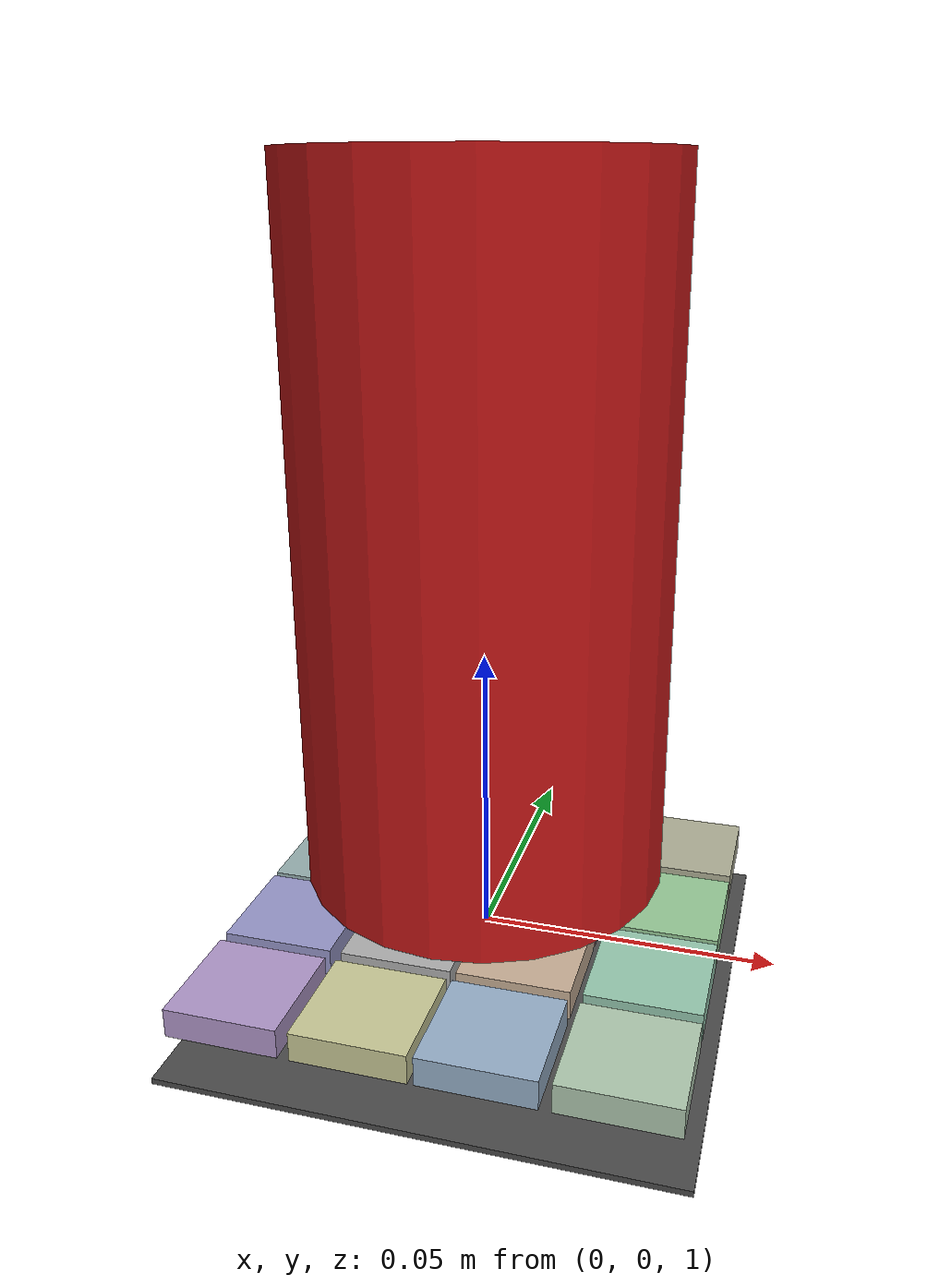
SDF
<sdf version="1.6">
<world name="default">
    <physics name="default_physics" default="0" type="ode">
        <max_step_size>0.0005</max_step_size>
        <real_time_factor>1</real_time_factor>
        <real_time_update_rate>50</real_time_update_rate>
        <ode>
            <solver>
                <type>quick</type>
                <iters>500</iters>
                <sor>1.2</sor>
                <use_dynamic_moi_rescaling>true</use_dynamic_moi_rescaling>
            </solver>
            <constraints>
                <cfm>0.0001</cfm>
                <erp>0.1</erp>
                <contact_max_correcting_vel>50</contact_max_correcting_vel>
                <contact_surface_layer>0.002</contact_surface_layer>
            </constraints>
        </ode>
    </physics>

    <include>
        <uri>model://ground_plane</uri>
    </include>
    <include>
        <uri>model://sun</uri>
    </include>

    <model name="force_sensor_grid">
        <!-- Row 1 -->
        <model name="sensor_00">
            <pose>-0.031 0.031 1.0 0 0 0</pose>
            <link name="sensor_link_00">
                <inertial>
                    <mass>0.2</mass>
                    <inertia>
                        <ixx>0.000001</ixx>
                        <ixy>0.0</ixy>
                        <ixz>0.0</ixz>
                        <iyy>0.000001</iyy>
                        <iyz>0.0</iyz>
                        <izz>0.000001</izz>
                    </inertia>
                </inertial>
                <visual name="visual">
                    <geometry>
                        <box>
                            <size>0.019 0.019 0.005</size>
                        </box>
                    </geometry>
                    <material>
                        <ambient>0.7 0.6 0.6 1</ambient>
                        <diffuse>0.7 0.6 0.6 1</diffuse>
                    </material>
                </visual>
                <collision name="collision">
                    <geometry>
                        <box>
                            <size>0.019 0.019 0.005</size>
                        </box>
                    </geometry>
                    <surface>
                        <contact>
                            <ode>
                                <soft_cfm>0.001</soft_cfm>
                                <soft_erp>0.2</soft_erp>
                                <kp>1000.0</kp>
                                <kd>100.0</kd>
                            </ode>
                        </contact>
                    </surface>
                </collision>
            </link>
            <joint name="sensor_joint_00" type="fixed">
                <parent>world</parent>
                <child>sensor_link_00</child>
                <physics>
                    <ode>
                        <damping>0.1</damping>
                        <stiffness>1000</stiffness>
                    </ode>
                </physics>
                <sensor name="force_torque_00" type="force_torque">
                    <always_on>1</always_on>
                     <update_rate>50</update_rate>
                    <force_torque>
                        <frame>child</frame>
                        <measure_direction>child_to_parent</measure_direction>
                    </force_torque>
                </sensor>
            </joint>
        </model>

        <model name="sensor_01">
            <pose>-0.010 0.031 1.0 0 0 0</pose>
            <link name="sensor_link_01">
                <inertial>
                    <mass>0.2</mass>
                    <inertia>
                        <ixx>0.000001</ixx>
                        <ixy>0.0</ixy>
                        <ixz>0.0</ixz>
                        <iyy>0.000001</iyy>
                        <iyz>0.0</iyz>
                        <izz>0.000001</izz>
                    </inertia>
                </inertial>
                <visual name="visual">
                    <geometry>
                        <box>
                            <size>0.019 0.019 0.005</size>
                        </box>
                    </geometry>
                    <material>
                        <ambient>0.6 0.7 0.6 1</ambient>
                        <diffuse>0.6 0.7 0.6 1</diffuse>
                    </material>
                </visual>
                <collision name="collision">
                    <geometry>
                        <box>
                            <size>0.019 0.019 0.005</size>
                        </box>
                    </geometry>
                    <surface>
                        <contact>
                            <ode>
                                <soft_cfm>0.001</soft_cfm>
                                <soft_erp>0.2</soft_erp>
                                <kp>1000.0</kp>
                                <kd>100.0</kd>
                            </ode>
                        </contact>
                    </surface>
                </collision>
            </link>
            <joint name="sensor_joint_01" type="fixed">
                <parent>world</parent>
                <child>sensor_link_01</child>
                <physics>
                    <ode>
                        <damping>0.1</damping>
                        <stiffness>1000</stiffness>
                    </ode>
                </physics>
                <sensor name="force_torque_01" type="force_torque">
                    <always_on>1</always_on>
                     <update_rate>50</update_rate>
                    <force_torque>
                        <frame>child</frame>
                        <measure_direction>child_to_parent</measure_direction>
                    </force_torque>
                </sensor>
            </joint>
        </model>

        <model name="sensor_02">
            <pose>0.010 0.031 1.0 0 0 0</pose>
            <link name="sensor_link_02">
                <inertial>
                    <mass>0.2</mass>
                    <inertia>
                        <ixx>0.000001</ixx>
                        <ixy>0.0</ixy>
                        <ixz>0.0</ixz>
                        <iyy>0.000001</iyy>
                        <iyz>0.0</iyz>
                        <izz>0.000001</izz>
                    </inertia>
                </inertial>
                <visual name="visual">
                    <geometry>
                        <box>
                            <size>0.019 0.019 0.005</size>
                        </box>
                    </geometry>
                    <material>
                        <ambient>0.6 0.6 0.7 1</ambient>
                        <diffuse>0.6 0.6 0.7 1</diffuse>
                    </material>
                </visual>
                <collision name="collision">
                    <geometry>
                        <box>
                            <size>0.019 0.019 0.005</size>
                        </box>
                    </geometry>
                    <surface>
                        <contact>
                            <ode>
                                <soft_cfm>0.001</soft_cfm>
                                <soft_erp>0.2</soft_erp>
                                <kp>1000.0</kp>
                                <kd>100.0</kd>
                            </ode>
                        </contact>
                    </surface>
                </collision>
            </link>
            <joint name="sensor_joint_02" type="fixed">
                <parent>world</parent>
                <child>sensor_link_02</child>
                <physics>
                    <ode>
                        <damping>0.1</damping>
                        <stiffness>1000</stiffness>
                    </ode>
                </physics>
                <sensor name="force_torque_02" type="force_torque">
                    <always_on>1</always_on>
                     <update_rate>50</update_rate>
                    <force_torque>
                        <frame>child</frame>
                        <measure_direction>child_to_parent</measure_direction>
                    </force_torque>
                </sensor>
            </joint>
        </model>

        <model name="sensor_03">
            <pose>0.031 0.031 1.0 0 0 0</pose>
            <link name="sensor_link_03">
                <inertial>
                    <mass>0.2</mass>
                    <inertia>
                        <ixx>0.000001</ixx>
                        <ixy>0.0</ixy>
                        <ixz>0.0</ixz>
                        <iyy>0.000001</iyy>
                        <iyz>0.0</iyz>
                        <izz>0.000001</izz>
                    </inertia>
                </inertial>
                <visual name="visual">
                    <geometry>
                        <box>
                            <size>0.019 0.019 0.005</size>
                        </box>
                    </geometry>
                    <material>
                        <ambient>0.7 0.7 0.6 1</ambient>
                        <diffuse>0.7 0.7 0.6 1</diffuse>
                    </material>
                </visual>
                <collision name="collision">
                    <geometry>
                        <box>
                            <size>0.019 0.019 0.005</size>
                        </box>
                    </geometry>
                    <surface>
                        <contact>
                            <ode>
                                <soft_cfm>0.001</soft_cfm>
                                <soft_erp>0.2</soft_erp>
                                <kp>1000.0</kp>
                                <kd>100.0</kd>
                            </ode>
                        </contact>
                    </surface>
                </collision>
            </link>
            <joint name="sensor_joint_03" type="fixed">
                <parent>world</parent>
                <child>sensor_link_03</child>
                <physics>
                    <ode>
                        <damping>0.1</damping>
                        <stiffness>1000</stiffness>
                    </ode>
                </physics>
                <sensor name="force_torque_03" type="force_torque">
                    <always_on>1</always_on>
                     <update_rate>50</update_rate>
                    <force_torque>
                        <frame>child</frame>
                        <measure_direction>child_to_parent</measure_direction>
                    </force_torque>
                </sensor>
            </joint>
        </model>

        <!-- Row 2 -->
        <model name="sensor_10">
            <pose>-0.031 0.010 1.0 0 0 0</pose>
            <link name="sensor_link_10">
                <inertial>
                    <mass>0.2</mass>
                    <inertia>
                        <ixx>0.000001</ixx>
                        <ixy>0.0</ixy>
                        <ixz>0.0</ixz>
                        <iyy>0.000001</iyy>
                        <iyz>0.0</iyz>
                        <izz>0.000001</izz>
                    </inertia>
                </inertial>
                <visual name="visual">
                    <geometry>
                        <box>
                            <size>0.019 0.019 0.005</size>
                        </box>
                    </geometry>
                    <material>
                        <ambient>0.6 0.7 0.7 1</ambient>
                        <diffuse>0.6 0.7 0.7 1</diffuse>
                    </material>
                </visual>
                <collision name="collision">
                    <geometry>
                        <box>
                            <size>0.019 0.019 0.005</size>
                        </box>
                    </geometry>
                    <surface>
                        <contact>
                            <ode>
                                <soft_cfm>0.001</soft_cfm>
                                <soft_erp>0.2</soft_erp>
                                <kp>1000.0</kp>
                                <kd>100.0</kd>
                            </ode>
                        </contact>
                    </surface>
                </collision>
            </link>
            <joint name="sensor_joint_10" type="fixed">
                <parent>world</parent>
                <child>sensor_link_10</child>
                <physics>
                    <ode>
                        <damping>0.1</damping>
                        <stiffness>1000</stiffness>
                    </ode>
                </physics>
                <sensor name="force_torque_10" type="force_torque">
                    <always_on>1</always_on>
                     <update_rate>50</update_rate>
                    <force_torque>
                        <frame>child</frame>
                        <measure_direction>child_to_parent</measure_direction>
                    </force_torque>
                </sensor>
            </joint>
        </model>

        <model name="sensor_11">
            <pose>-0.010 0.010 1.0 0 0 0</pose>
            <link name="sensor_link_11">
                <inertial>
                    <mass>0.2</mass>
                    <inertia>
                        <ixx>0.000001</ixx>
                        <ixy>0.0</ixy>
                        <ixz>0.0</ixz>
                        <iyy>0.000001</iyy>
                        <iyz>0.0</iyz>
                        <izz>0.000001</izz>
                    </inertia>
                </inertial>
                <visual name="visual">
                    <geometry>
                        <box>
                            <size>0.019 0.019 0.005</size>
                        </box>
                    </geometry>
                    <material>
                        <ambient>0.7 0.6 0.7 1</ambient>
                        <diffuse>0.7 0.6 0.7 1</diffuse>
                    </material>
                </visual>
                <collision name="collision">
                    <geometry>
                        <box>
                            <size>0.019 0.019 0.005</size>
                        </box>
                    </geometry>
                    <surface>
                        <contact>
                            <ode>
                                <soft_cfm>0.001</soft_cfm>
                                <soft_erp>0.2</soft_erp>
                                <kp>1000.0</kp>
                                <kd>100.0</kd>
                            </ode>
                        </contact>
                    </surface>
                </collision>
            </link>
            <joint name="sensor_joint_11" type="fixed">
                <parent>world</parent>
                <child>sensor_link_11</child>
                <physics>
                    <ode>
                        <damping>0.1</damping>
                        <stiffness>1000</stiffness>
                    </ode>
                </physics>
                <sensor name="force_torque_11" type="force_torque">
                    <always_on>1</always_on>
                     <update_rate>50</update_rate>
                    <force_torque>
                        <frame>child</frame>
                        <measure_direction>child_to_parent</measure_direction>
                    </force_torque>
                </sensor>
            </joint>
        </model>

        <model name="sensor_12">
            <pose>0.010 0.010 1.0 0 0 0</pose>
            <link name="sensor_link_12">
                <inertial>
                    <mass>0.2</mass>
                    <inertia>
                        <ixx>0.000001</ixx>
                        <ixy>0.0</ixy>
                        <ixz>0.0</ixz>
                        <iyy>0.000001</iyy>
                        <iyz>0.0</iyz>
                        <izz>0.000001</izz>
                    </inertia>
                </inertial>
                <visual name="visual">
                    <geometry>
                        <box>
                            <size>0.019 0.019 0.005</size>
                        </box>
                    </geometry>
                    <material>
                        <ambient>0.8 0.6 0.6 1</ambient>
                        <diffuse>0.8 0.6 0.6 1</diffuse>
                    </material>
                </visual>
                <collision name="collision">
                    <geometry>
                        <box>
                            <size>0.019 0.019 0.005</size>
                        </box>
                    </geometry>
                    <surface>
                        <contact>
                            <ode>
                                <soft_cfm>0.001</soft_cfm>
                                <soft_erp>0.2</soft_erp>
                                <kp>1000.0</kp>
                                <kd>100.0</kd>
                            </ode>
                        </contact>
                    </surface>
                </collision>
            </link>
            <joint name="sensor_joint_12" type="fixed">
                <parent>world</parent>
                <child>sensor_link_12</child>
                <physics>
                    <ode>
                        <damping>0.1</damping>
                        <stiffness>1000</stiffness>
                    </ode>
                </physics>
                <sensor name="force_torque_12" type="force_torque">
                    <always_on>1</always_on>
                     <update_rate>50</update_rate>
                    <force_torque>
                        <frame>child</frame>
                        <measure_direction>child_to_parent</measure_direction>
                    </force_torque>
                </sensor>
            </joint>
        </model>

        <model name="sensor_13">
            <pose>0.031 0.010 1.0 0 0 0</pose>
            <link name="sensor_link_13">
                <inertial>
                    <mass>0.2</mass>
                    <inertia>
                        <ixx>0.000001</ixx>
                        <ixy>0.0</ixy>
                        <ixz>0.0</ixz>
                        <iyy>0.000001</iyy>
                        <iyz>0.0</iyz>
                        <izz>0.000001</izz>
                    </inertia>
                </inertial>
                <visual name="visual">
                    <geometry>
                        <box>
                            <size>0.019 0.019 0.005</size>
                        </box>
                    </geometry>
                    <material>
                        <ambient>0.6 0.8 0.6 1</ambient>
                        <diffuse>0.6 0.8 0.6 1</diffuse>
                    </material>
                </visual>
                <collision name="collision">
                    <geometry>
                        <box>
                            <size>0.019 0.019 0.005</size>
                        </box>
                    </geometry>
                    <surface>
                        <contact>
                            <ode>
                                <soft_cfm>0.001</soft_cfm>
                                <soft_erp>0.2</soft_erp>
                                <kp>1000.0</kp>
                                <kd>100.0</kd>
                            </ode>
                        </contact>
                    </surface>
                </collision>
            </link>
            <joint name="sensor_joint_13" type="fixed">
                <parent>world</parent>
                <child>sensor_link_13</child>
                <physics>
                    <ode>
                        <damping>0.1</damping>
                        <stiffness>1000</stiffness>
                    </ode>
                </physics>
                <sensor name="force_torque_13" type="force_torque">
                    <always_on>1</always_on>
                     <update_rate>50</update_rate>
                    <force_torque>
                        <frame>child</frame>
                        <measure_direction>child_to_parent</measure_direction>
                    </force_torque>
                </sensor>
            </joint>
        </model>

        <!-- Row 3 -->
        <model name="sensor_20">
            <pose>-0.031 -0.010 1.0 0 0 0</pose>
            <link name="sensor_link_20">
                <inertial>
                    <mass>0.2</mass>
                    <inertia>
                        <ixx>0.000001</ixx>
                        <ixy>0.0</ixy>
                        <ixz>0.0</ixz>
                        <iyy>0.000001</iyy>
                        <iyz>0.0</iyz>
                        <izz>0.000001</izz>
                    </inertia>
                </inertial>
                <visual name="visual">
                    <geometry>
                        <box>
                            <size>0.019 0.019 0.005</size>
                        </box>
                    </geometry>
                    <material>
                        <ambient>0.6 0.6 0.8 1</ambient>
                        <diffuse>0.6 0.6 0.8 1</diffuse>
                    </material>
                </visual>
                <collision name="collision">
                    <geometry>
                        <box>
                            <size>0.019 0.019 0.005</size>
                        </box>
                    </geometry>
                    <surface>
                        <contact>
                            <ode>
                                <soft_cfm>0.001</soft_cfm>
                                <soft_erp>0.2</soft_erp>
                                <kp>1000.0</kp>
                                <kd>100.0</kd>
                            </ode>
                        </contact>
                    </surface>
                </collision>
            </link>
            <joint name="sensor_joint_20" type="fixed">
                <parent>world</parent>
                <child>sensor_link_20</child>
                <physics>
                    <ode>
                        <damping>0.1</damping>
                        <stiffness>1000</stiffness>
                    </ode>
                </physics>
                <sensor name="force_torque_20" type="force_torque">
                    <always_on>1</always_on>
                     <update_rate>50</update_rate>
                    <force_torque>
                        <frame>child</frame>
                        <measure_direction>child_to_parent</measure_direction>
                    </force_torque>
                </sensor>
            </joint>
        </model>

        <model name="sensor_21">
            <pose>-0.010 -0.010 1.0 0 0 0</pose>
            <link name="sensor_link_21">
                <inertial>
                    <mass>0.2</mass>
                    <inertia>
                        <ixx>0.000001</ixx>
                        <ixy>0.0</ixy>
                        <ixz>0.0</ixz>
                        <iyy>0.000001</iyy>
                        <iyz>0.0</iyz>
                        <izz>0.000001</izz>
                    </inertia>
                </inertial>
                <visual name="visual">
                    <geometry>
                        <box>
                            <size>0.019 0.019 0.005</size>
                        </box>
                    </geometry>
                    <material>
                        <ambient>0.7 0.7 0.7 1</ambient>
                        <diffuse>0.7 0.7 0.7 1</diffuse>
                    </material>
                </visual>
                <collision name="collision">
                    <geometry>
                        <box>
                            <size>0.019 0.019 0.005</size>
                        </box>
                    </geometry>
                    <surface>
                        <contact>
                            <ode>
                                <soft_cfm>0.001</soft_cfm>
                                <soft_erp>0.2</soft_erp>
                                <kp>1000.0</kp>
                                <kd>100.0</kd>
                            </ode>
                        </contact>
                    </surface>
                </collision>
            </link>
            <joint name="sensor_joint_21" type="fixed">
                <parent>world</parent>
                <child>sensor_link_21</child>
                <physics>
                    <ode>
                        <damping>0.1</damping>
                        <stiffness>1000</stiffness>
                    </ode>
                </physics>
                <sensor name="force_torque_21" type="force_torque">
                    <always_on>1</always_on>
                     <update_rate>50</update_rate>
                    <force_torque>
                        <frame>child</frame>
                        <measure_direction>child_to_parent</measure_direction>
                    </force_torque>
                </sensor>
            </joint>
        </model>

        <model name="sensor_22">
            <pose>0.010 -0.010 1.0 0 0 0</pose>
            <link name="sensor_link_22">
                <inertial>
                    <mass>0.2</mass>
                    <inertia>
                        <ixx>0.000001</ixx>
                        <ixy>0.0</ixy>
                        <ixz>0.0</ixz>
                        <iyy>0.000001</iyy>
                        <iyz>0.0</iyz>
                        <izz>0.000001</izz>
                    </inertia>
                </inertial>
                <visual name="visual">
                    <geometry>
                        <box>
                            <size>0.019 0.019 0.005</size>
                        </box>
                    </geometry>
                    <material>
                        <ambient>0.8 0.7 0.6 1</ambient>
                        <diffuse>0.8 0.7 0.6 1</diffuse>
                    </material>
                </visual>
                <collision name="collision">
                    <geometry>
                        <box>
                            <size>0.019 0.019 0.005</size>
                        </box>
                    </geometry>
                    <surface>
                        <contact>
                            <ode>
                                <soft_cfm>0.001</soft_cfm>
                                <soft_erp>0.2</soft_erp>
                                <kp>1000.0</kp>
                                <kd>100.0</kd>
                            </ode>
                        </contact>
                    </surface>
                </collision>
            </link>
            <joint name="sensor_joint_22" type="fixed">
                <parent>world</parent>
                <child>sensor_link_22</child>
                <physics>
                    <ode>
                        <damping>0.1</damping>
                        <stiffness>1000</stiffness>
                    </ode>
                </physics>
                <sensor name="force_torque_22" type="force_torque">
                    <always_on>1</always_on>
                     <update_rate>50</update_rate>
                    <force_torque>
                        <frame>child</frame>
                        <measure_direction>child_to_parent</measure_direction>
                    </force_torque>
                </sensor>
            </joint>
        </model>

        <model name="sensor_23">
            <pose>0.031 -0.010 1.0 0 0 0</pose>
            <link name="sensor_link_23">
                <inertial>
                    <mass>0.2</mass>
                    <inertia>
                        <ixx>0.000001</ixx>
                        <ixy>0.0</ixy>
                        <ixz>0.0</ixz>
                        <iyy>0.000001</iyy>
                        <iyz>0.0</iyz>
                        <izz>0.000001</izz>
                    </inertia>
                </inertial>
                <visual name="visual">
                    <geometry>
                        <box>
                            <size>0.019 0.019 0.005</size>
                        </box>
                    </geometry>
                    <material>
                        <ambient>0.6 0.8 0.7 1</ambient>
                        <diffuse>0.6 0.8 0.7 1</diffuse>
                    </material>
                </visual>
                <collision name="collision">
                    <geometry>
                        <box>
                            <size>0.019 0.019 0.005</size>
                        </box>
                    </geometry>
                    <surface>
                        <contact>
                            <ode>
                                <soft_cfm>0.001</soft_cfm>
                                <soft_erp>0.2</soft_erp>
                                <kp>1000.0</kp>
                                <kd>100.0</kd>
                            </ode>
                        </contact>
                    </surface>
                </collision>
            </link>
            <joint name="sensor_joint_23" type="fixed">
                <parent>world</parent>
                <child>sensor_link_23</child>
                <physics>
                    <ode>
                        <damping>0.1</damping>
                        <stiffness>1000</stiffness>
                    </ode>
                </physics>
                <sensor name="force_torque_23" type="force_torque">
                    <always_on>1</always_on>
                     <update_rate>50</update_rate>
                    <force_torque>
                        <frame>child</frame>
                        <measure_direction>child_to_parent</measure_direction>
                    </force_torque>
                </sensor>
            </joint>
        </model>

        <!-- Row 4 -->
        <model name="sensor_30">
            <pose>-0.031 -0.031 1.0 0 0 0</pose>
            <link name="sensor_link_30">
                <inertial>
                    <mass>0.2</mass>
                    <inertia>
                        <ixx>0.000001</ixx>
                        <ixy>0.0</ixy>
                        <ixz>0.0</ixz>
                        <iyy>0.000001</iyy>
                        <iyz>0.0</iyz>
                        <izz>0.000001</izz>
                    </inertia>
                </inertial>
                <visual name="visual">
                    <geometry>
                        <box>
                            <size>0.019 0.019 0.005</size>
                        </box>
                    </geometry>
                    <material>
                        <ambient>0.7 0.6 0.8 1</ambient>
                        <diffuse>0.7 0.6 0.8 1</diffuse>
                    </material>
                </visual>
                <collision name="collision">
                    <geometry>
                        <box>
                            <size>0.019 0.019 0.005</size>
                        </box>
                    </geometry>
                    <surface>
                        <contact>
                            <ode>
                                <soft_cfm>0.001</soft_cfm>
                                <soft_erp>0.2</soft_erp>
                                <kp>1000.0</kp>
                                <kd>100.0</kd>
                            </ode>
                        </contact>
                    </surface>
                </collision>
            </link>
            <joint name="sensor_joint_30" type="fixed">
                <parent>world</parent>
                <child>sensor_link_30</child>
                <physics>
                    <ode>
                        <damping>0.1</damping>
                        <stiffness>1000</stiffness>
                    </ode>
                </physics>
                <sensor name="force_torque_30" type="force_torque">
                    <always_on>1</always_on>
                     <update_rate>50</update_rate>
                    <force_torque>
                        <frame>child</frame>
                        <measure_direction>child_to_parent</measure_direction>
                    </force_torque>
                </sensor>
            </joint>
        </model>

        <model name="sensor_31">
            <pose>-0.010 -0.031 1.0 0 0 0</pose>
            <link name="sensor_link_31">
                <inertial>
                    <mass>0.2</mass>
                    <inertia>
                        <ixx>0.000001</ixx>
                        <ixy>0.0</ixy>
                        <ixz>0.0</ixz>
                        <iyy>0.000001</iyy>
                        <iyz>0.0</iyz>
                        <izz>0.000001</izz>
                    </inertia>
                </inertial>
                <visual name="visual">
                    <geometry>
                        <box>
                            <size>0.019 0.019 0.005</size>
                        </box>
                    </geometry>
                    <material>
                        <ambient>0.8 0.8 0.6 1</ambient>
                        <diffuse>0.8 0.8 0.6 1</diffuse>
                    </material>
                </visual>
                <collision name="collision">
                    <geometry>
                        <box>
                            <size>0.019 0.019 0.005</size>
                        </box>
                    </geometry>
                    <surface>
                        <contact>
                            <ode>
                                <soft_cfm>0.001</soft_cfm>
                                <soft_erp>0.2</soft_erp>
                                <kp>1000.0</kp>
                                <kd>100.0</kd>
                            </ode>
                        </contact>
                    </surface>
                </collision>
            </link>
            <joint name="sensor_joint_31" type="fixed">
                <parent>world</parent>
                <child>sensor_link_31</child>
                <physics>
                    <ode>
                        <damping>0.1</damping>
                        <stiffness>1000</stiffness>
                    </ode>
                </physics>
                <sensor name="force_torque_31" type="force_torque">
                    <always_on>1</always_on>
                     <update_rate>50</update_rate>
                    <force_torque>
                        <frame>child</frame>
                        <measure_direction>child_to_parent</measure_direction>
                    </force_torque>
                </sensor>
            </joint>
        </model>

        <model name="sensor_32">
            <pose>0.010 -0.031 1.0 0 0 0</pose>
            <link name="sensor_link_32">
                <inertial>
                    <mass>0.2</mass>
                    <inertia>
                        <ixx>0.000001</ixx>
                        <ixy>0.0</ixy>
                        <ixz>0.0</ixz>
                        <iyy>0.000001</iyy>
                        <iyz>0.0</iyz>
                        <izz>0.000001</izz>
                    </inertia>
                </inertial>
                <visual name="visual">
                    <geometry>
                        <box>
                            <size>0.019 0.019 0.005</size>
                        </box>
                    </geometry>
                    <material>
                        <ambient>0.6 0.7 0.8 1</ambient>
                        <diffuse>0.6 0.7 0.8 1</diffuse>
                    </material>
                </visual>
                <collision name="collision">
                    <geometry>
                        <box>
                            <size>0.019 0.019 0.005</size>
                        </box>
                    </geometry>
                    <surface>
                        <contact>
                            <ode>
                                <soft_cfm>0.001</soft_cfm>
                                <soft_erp>0.2</soft_erp>
                                <kp>1000.0</kp>
                                <kd>100.0</kd>
                            </ode>
                        </contact>
                    </surface>
                </collision>
            </link>
            <joint name="sensor_joint_32" type="fixed">
                <parent>world</parent>
                <child>sensor_link_32</child>
                <physics>
                    <ode>
                        <damping>0.1</damping>
                        <stiffness>1000</stiffness>
                    </ode>
                </physics>
                <sensor name="force_torque_32" type="force_torque">
                    <always_on>1</always_on>
                     <update_rate>50</update_rate>
                    <force_torque>
                        <frame>child</frame>
                        <measure_direction>child_to_parent</measure_direction>
                    </force_torque>
                </sensor>
            </joint>
        </model>

        <model name="sensor_33">
            <pose>0.031 -0.031 1.0 0 0 0</pose>
            <link name="sensor_link_33">
                <inertial>
                    <mass>0.2</mass>
                    <inertia>
                        <ixx>0.000001</ixx>
                        <ixy>0.0</ixy>
                        <ixz>0.0</ixz>
                        <iyy>0.000001</iyy>
                        <iyz>0.0</iyz>
                        <izz>0.000001</izz>
                    </inertia>
                </inertial>
                <visual name="visual">
                    <geometry>
                        <box>
                            <size>0.019 0.019 0.005</size>
                        </box>
                    </geometry>
                    <material>
                        <ambient>0.7 0.8 0.7 1</ambient>
                        <diffuse>0.7 0.8 0.7 1</diffuse>
                    </material>
                </visual>
                <collision name="collision">
                    <geometry>
                        <box>
                            <size>0.019 0.019 0.005</size>
                        </box>
                    </geometry>
                    <surface>
                        <contact>
                            <ode>
                                <soft_cfm>0.001</soft_cfm>
                                <soft_erp>0.2</soft_erp>
                                <kp>1000.0</kp>
                                <kd>100.0</kd>
                            </ode>
                        </contact>
                    </surface>
                </collision>
            </link>
            <joint name="sensor_joint_33" type="fixed">
                <parent>world</parent>
                <child>sensor_link_33</child>
                <physics>
                    <ode>
                        <damping>0.1</damping>
                        <stiffness>1000</stiffness>
                    </ode>
                </physics>
                <sensor name="force_torque_33" type="force_torque">
                    <always_on>1</always_on>
                     <update_rate>50</update_rate>
                    <force_torque>
                        <frame>child</frame>
                        <measure_direction>child_to_parent</measure_direction>
                    </force_torque>
                </sensor>
            </joint>
        </model>

        <!-- Cover Plate -->
        <model name="cover_plate">
            <pose>0 0 0.99 0 0 0</pose>
            <link name="plate_link">
                <inertial>
                    <mass>0.1</mass>
                    <inertia>
                        <ixx>0.000001</ixx>
                        <ixy>0.0</ixy>
                        <ixz>0.0</ixz>
                        <iyy>0.000001</iyy>
                        <iyz>0.0</iyz>
                        <izz>0.000001</izz>
                    </inertia>
                </inertial>
                <visual name="visual">
                    <geometry>
                        <box>
                            <size>0.085 0.085 0.001</size>
                        </box>
                    </geometry>
                    <material>
                        <ambient>0.3 0.3 0.3 1</ambient>
                        <diffuse>0.3 0.3 0.3 1</diffuse>
                    </material>
                </visual>
                <collision name="collision">
                    <geometry>
                        <box>
                            <size>0.085 0.085 0.001</size>
                        </box>
                    </geometry>
                    <surface>
                        <contact>
                            <ode>
                                <soft_cfm>0.001</soft_cfm>
                                <soft_erp>0.2</soft_erp>
                                <kp>1000.0</kp>
                                <kd>100.0</kd>
                                <min_depth>0.001</min_depth>
                            </ode>
                        </contact>
                        <friction>
                            <ode>
                                <mu>1.0</mu>
                                <mu2>1.0</mu2>
                            </ode>
                        </friction>
                    </surface>
                </collision>
            </link>
            <joint name="plate_joint" type="fixed">
                <parent>world</parent>
                <child>plate_link</child>
                <physics>
                    <ode>
                        <damping>0.1</damping>
                        <stiffness>1000</stiffness>
                    </ode>
                </physics>
            </joint>
        </model>
    </model>

    <!-- Coke Can Model -->
    <model name="coke_can">
        <pose>0 0 1.07 0 0 0</pose>
        <link name="link">
            <inertial>
                <mass>0.5</mass>
                <inertia>
                    <ixx>0.00055575</ixx>
                    <ixy>0</ixy>
                    <ixz>0</ixz>
                    <iyy>0.00055575</iyy>
                    <iyz>0</iyz>
                    <izz>0.0001755</izz>
                </inertia>
            </inertial>
            <collision name="collision">
                <geometry>
                    <cylinder>
                        <radius>0.0303</radius>
                        <length>0.115</length>
                    </cylinder>
                </geometry>
                <surface>
                    <contact>
                        <ode>
                            <soft_cfm>0.001</soft_cfm>
                            <soft_erp>0.2</soft_erp>
                            <kp>1000.0</kp>
                            <kd>100.0</kd>
                            <min_depth>0.001</min_depth>
                        </ode>
                    </contact>
                    <friction>
                        <ode>
                            <mu>1.0</mu>
                            <mu2>1.0</mu2>
                        </ode>
                    </friction>
                </surface>
            </collision>
            <visual name="visual">
                <geometry>
                    <cylinder>
                        <radius>0.0303</radius>
                        <length>0.115</length>
                    </cylinder>
                </geometry>
                <material>
                    <ambient>0.8 0.1 0.1 1</ambient>
                    <diffuse>0.8 0.1 0.1 1</diffuse>
                </material>
            </visual>
        </link>
    </model>

</world>
</sdf>
